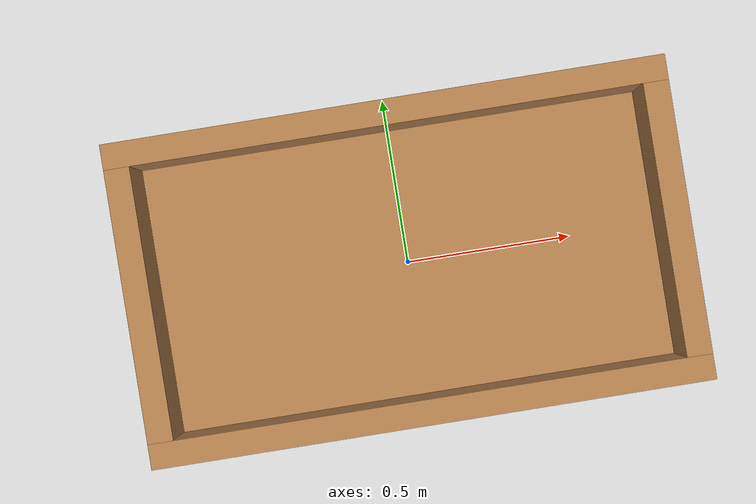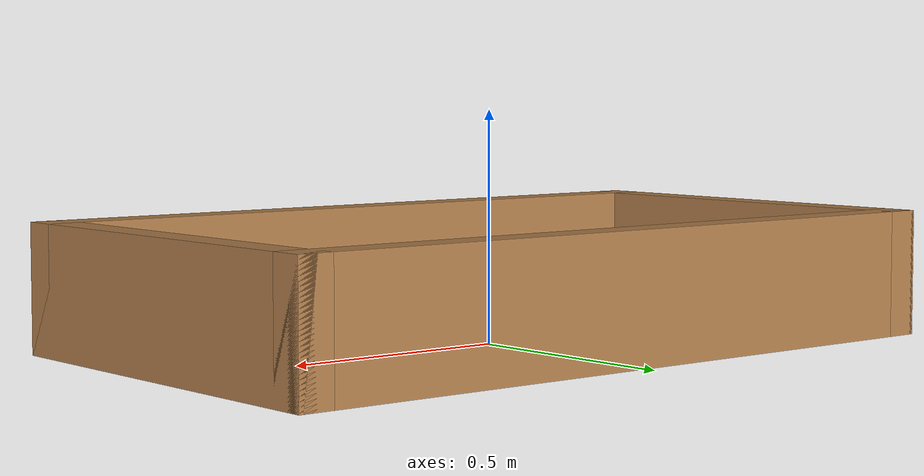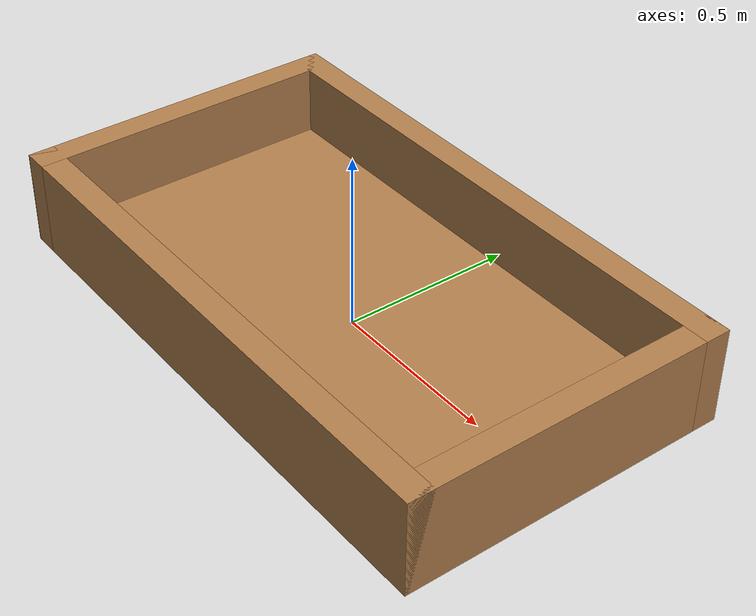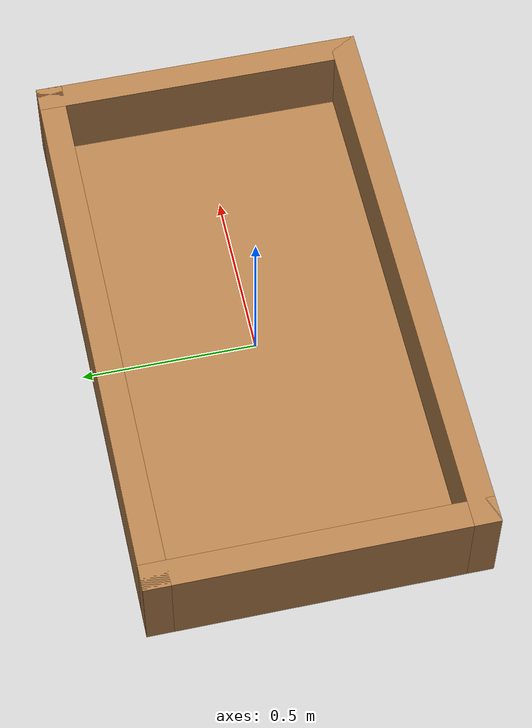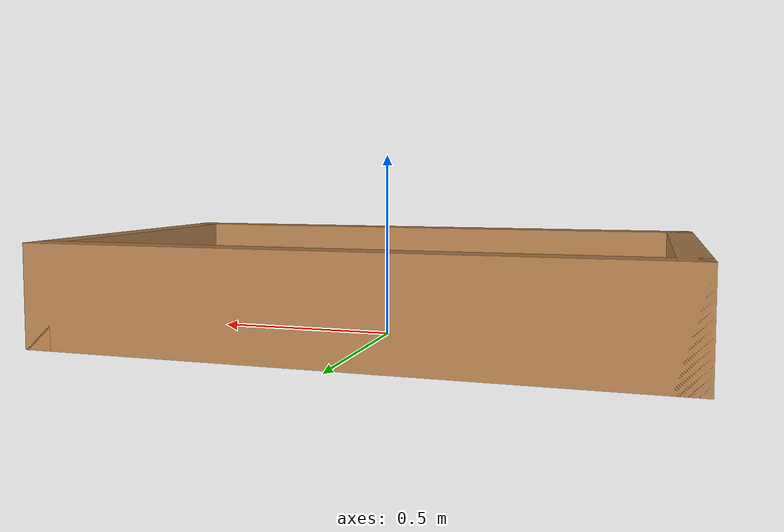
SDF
<sdf version="1.5">

  <model name="sand_box">

    <link name='wall_0'>
      <pose>0 -0.4375 0.1375 0 -0 0</pose>
      <inertial>
        <mass>35026.62993572085</mass>
        <inertia>
          <ixx>237.15947352310997</ixx>
          <ixy>0</ixy>
          <ixz>0</ixz>
          <iyy>8167.407407407408</iyy>
          <iyz>0</iyz>
          <izz>7963.085399449036</izz>
        </inertia>
      </inertial>
      <visual name='visual'>
        <pose>0 0 0 0 -0 0</pose>
        <geometry>
          <box>
            <size>1.65 0.075 0.275</size>
          </box>
        </geometry>
        <material>
          <script>
            <uri>file://media/materials/scripts/gazebo.material</uri>
            <name>Gazebo/Wood</name>
          </script>
        </material>
      </visual>
      <collision name='collision'>
        <pose>0 0 0 0 -0 0</pose>
        <geometry>
          <box>
            <size>1.65 0.075 0.275</size>
          </box>
        </geometry>
      </collision>
    </link>

    <link name='wall_1'>
      <pose>0 0.4375 0.1375 0 -0 0</pose>
      <inertial>
        <mass>35026.62993572085</mass>
        <inertia>
          <ixx>237.15947352310997</ixx>
          <ixy>0</ixy>
          <ixz>0</ixz>
          <iyy>8167.407407407408</iyy>
          <iyz>0</iyz>
          <izz>7963.085399449036</izz>
        </inertia>
      </inertial>

      <visual name='visual'>
        <pose>0 0 0 0 -0 0</pose>
        <geometry>
          <box>
            <size>1.65 0.075 0.275</size>
          </box>
        </geometry>
        <material>
          <script>
            <uri>file://media/materials/scripts/gazebo.material</uri>
            <name>Gazebo/Wood</name>
          </script>
        </material>
      </visual>
      <collision name='collision'>
        <pose>0 0 0 0 -0 0</pose>
        <geometry>
          <box>
            <size>1.65 0.075 0.275</size>
          </box>
        </geometry>
      </collision>
    </link>

    <link name='wall_2'>

      <pose>-0.7875 0 0.1375 0 0 0</pose>
      <inertial>
        <mass>60835.72567783093</mass>
        <inertia>
          <ixx>4958.745348219032</ixx>
          <ixy>0</ixy>
          <ixz>0</ixz>
          <iyy>411.9085592769804</iyy>
          <iyz>0</iyz>
          <izz>4603.870281765018</izz>
        </inertia>
      </inertial>

      <collision name='collision'>
        <pose>0 0 0 0 -0 0</pose>
        <geometry>
          <box>
            <size>0.075 0.9500000000000001 0.275</size>
          </box>
        </geometry>
      </collision>
      <visual name='visual'>
        <pose>0 0 0 0 -0 0</pose>
        <geometry>
          <box>
            <size>0.075 0.9500000000000001 0.275</size>
          </box>
        </geometry>
        <material>
          <script>
            <uri>file://media/materials/scripts/gazebo.material</uri>
            <name>Gazebo/Wood</name>
          </script>
        </material>
      </visual>
    </link>

    <link name='wall_3'>

      <pose>0.7875 0 0.1375 0 0 0</pose>
      <inertial>
        <mass>60835.72567783093</mass>
        <inertia>
          <ixx>4958.745348219032</ixx>
          <ixy>0</ixy>
          <ixz>0</ixz>
          <iyy>411.9085592769804</iyy>
          <iyz>0</iyz>
          <izz>4603.870281765018</izz>
        </inertia>
      </inertial>
      <visual name='visual'>
        <pose>0 0 0 0 -0 0</pose>
        <geometry>
          <box>
            <size>0.075 0.9500000000000001 0.275</size>
          </box>
        </geometry>
        <material>
          <script>
            <uri>file://media/materials/scripts/gazebo.material</uri>
            <name>Gazebo/Wood</name>
          </script>
        </material>
      </visual>
      <collision name='collision'>
        <pose>0 0 0 0 -0 0</pose>
        <geometry>
          <box>
            <size>0.075 0.9500000000000001 0.275</size>
          </box>
        </geometry>
      </collision>
    </link>

    <link name='bottom'>
      <pose>0 0 0.0375 0 0 0</pose>
      <inertial>
        <mass>13244.444444444443</mass>
        <inertia>
          <ixx>750.5185185185187</ixx>
          <ixy>0</ixy>
          <ixz>0</ixz>
          <iyy>2527.4814814814813</iyy>
          <iyz>0</iyz>
          <izz>3189.703703703704</izz>
        </inertia>
      </inertial>

      <collision name='collision'>
        <pose>0 0 0 0 -0 0</pose>
        <geometry>
          <box>
            <size>1.5 0.8 0.075</size>
          </box>
        </geometry>
      </collision>

      <visual name='visual'>
        <geometry>
          <box>
            <size>1.5 0.8 0.075</size>
          </box>
        </geometry>
        <material>
          <script>
            <uri>file://media/materials/scripts/gazebo.material</uri>
            <name>Gazebo/Wood</name>
          </script>
        </material>
      </visual>
    </link>

    <joint name="bottom_wall_0" type="revolute">
      <parent>bottom</parent>
      <child>wall_0</child>
      <axis>
        <xyz>0 1 0</xyz>
        <limit>
          <upper>0</upper>
          <lower>0</lower>
        </limit>
      </axis>
    </joint>

    <joint name="bottom_wall_1" type="revolute">
      <parent>bottom</parent>
      <child>wall_1</child>
      <axis>
        <xyz>1 0 0</xyz>
        <limit>
          <upper>0</upper>
          <lower>0</lower>
        </limit>
      </axis>
    </joint>

    <joint name="bottom_wall_2" type="revolute">
      <parent>bottom</parent>
      <child>wall_2</child>
      <axis>
        <xyz>0 1 0</xyz>
        <limit>
          <upper>0</upper>
          <lower>0</lower>
        </limit>
      </axis>
    </joint>

    <joint name="bottom_wall_3" type="revolute">
      <parent>bottom</parent>
      <child>wall_3</child>
      <axis>
        <xyz>1 0 0</xyz>
        <limit>
          <upper>0</upper>
          <lower>0</lower>
        </limit>
      </axis>
    </joint>

  </model>
</sdf>
